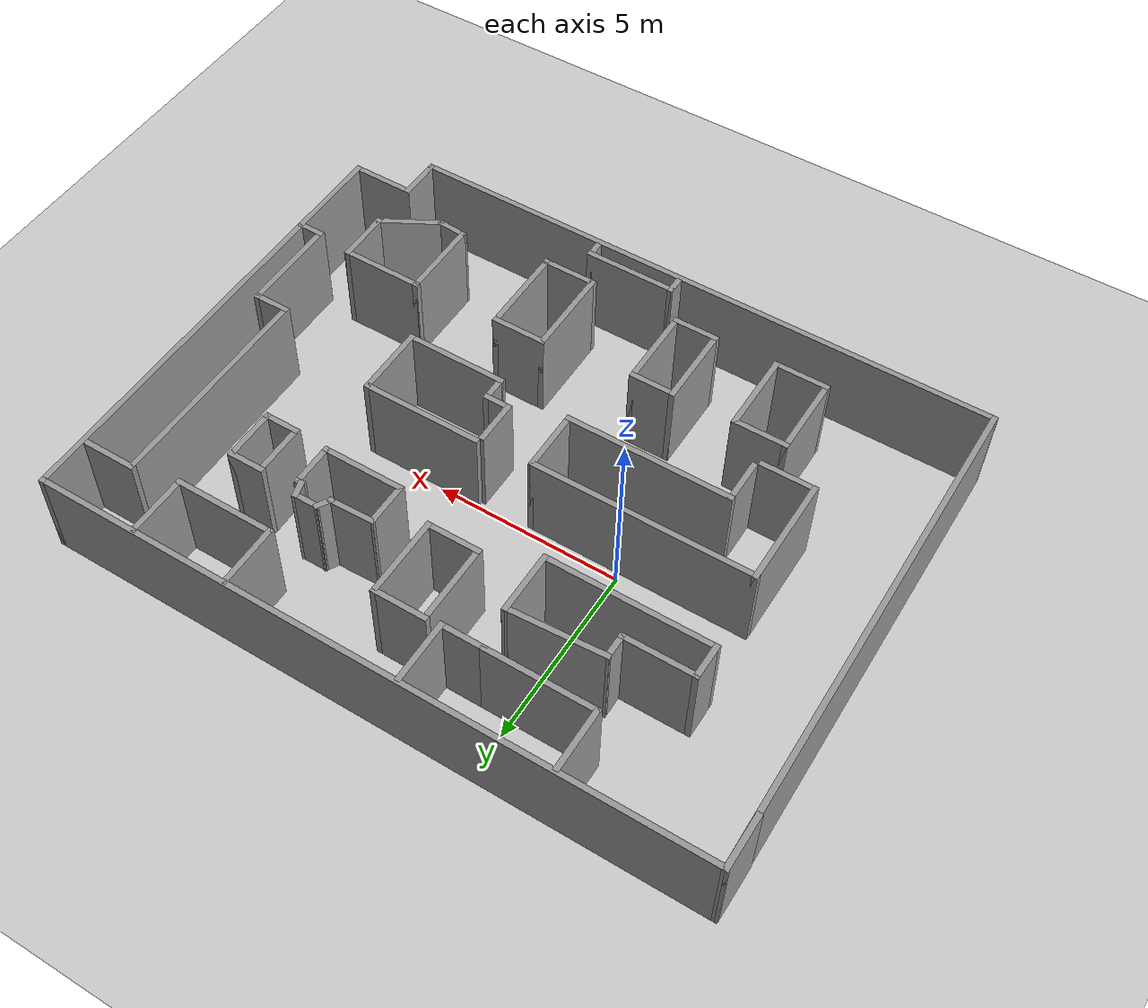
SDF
<?xml version="1.0" ?>

<sdf version="1.5">
    <world name="default">
        <!-- Target real time factor is the product of max_step_size and real_time_update_rate -->
        <!-- Negative real_time_update_rate means that Gazebo will run as fast as possible -->
        <physics type="ode">
            <type>world</type>
            <max_step_size>0.001</max_step_size>
            <real_time_update_rate>1000</real_time_update_rate>
            <iters>500</iters>
        </physics>
        <!-- A global light source -->
        <include>
            <uri>model://sun</uri>
        </include>
        <!-- A ground plane -->
        <include>
            <uri>model://ground_plane</uri>
        </include>

          <model name='E3_121'>
            <pose>2.81135 -0.528435 0 0 -0 0</pose>
            <link name='Wall_0'>
              <collision name='Wall_0_Collision'>
                <geometry>
                  <box>
                    <size>1.5 0.15 2.5</size>
                  </box>
                </geometry>
                <pose>0 0 1.25 0 -0 0</pose>
              </collision>
              <visual name='Wall_0_Visual'>
                <pose>0 0 1.25 0 -0 0</pose>
                <geometry>
                  <box>
                    <size>1.5 0.15 2.5</size>
                  </box>
                </geometry>
                <material>
                  <script>
                    <uri>file://media/materials/scripts/gazebo.material</uri>
                    <name>Gazebo/Grey</name>
                  </script>
                  <ambient>1 1 1 1</ambient>
                </material>
                <meta>
                  <layer>0</layer>
                </meta>
              </visual>
              <pose>-8.92459 6.05 0 0 -0 1.5708</pose>
            </link>
            <link name='Wall_1'>
              <collision name='Wall_1_Collision'>
                <geometry>
                  <box>
                    <size>18 0.15 2.5</size>
                  </box>
                </geometry>
                <pose>0 0 1.25 0 -0 0</pose>
              </collision>
              <visual name='Wall_1_Visual'>
                <pose>0 0 1.25 0 -0 0</pose>
                <geometry>
                  <box>
                    <size>18 0.15 2.5</size>
                  </box>
                </geometry>
                <material>
                  <script>
                    <uri>file://media/materials/scripts/gazebo.material</uri>
                    <name>Gazebo/Grey</name>
                  </script>
                  <ambient>1 1 1 1</ambient>
                </material>
                <meta>
                  <layer>0</layer>
                </meta>
              </visual>
              <pose>0.000416 6.725 0 0 -0 0</pose>
            </link>
            <link name='Wall_10'>
              <collision name='Wall_10_Collision'>
                <geometry>
                  <box>
                    <size>4.5 0.15 2.5</size>
                  </box>
                </geometry>
                <pose>0 0 1.25 0 -0 0</pose>
              </collision>
              <visual name='Wall_10_Visual'>
                <pose>0 0 1.25 0 -0 0</pose>
                <geometry>
                  <box>
                    <size>4.5 0.15 2.5</size>
                  </box>
                </geometry>
                <material>
                  <script>
                    <uri>file://media/materials/scripts/gazebo.material</uri>
                    <name>Gazebo/Grey</name>
                  </script>
                  <ambient>1 1 1 1</ambient>
                </material>
                <meta>
                  <layer>0</layer>
                </meta>
              </visual>
              <pose>-2.4703 -1.33268 0 0 -0 3.14159</pose>
            </link>
            <link name='Wall_11'>
              <collision name='Wall_11_Collision'>
                <geometry>
                  <box>
                    <size>1.25 0.15 2.5</size>
                  </box>
                </geometry>
                <pose>0 0 1.25 0 -0 0</pose>
              </collision>
              <visual name='Wall_11_Visual'>
                <pose>0 0 1.25 0 -0 0</pose>
                <geometry>
                  <box>
                    <size>1.25 0.15 2.5</size>
                  </box>
                </geometry>
                <material>
                  <script>
                    <uri>file://media/materials/scripts/gazebo.material</uri>
                    <name>Gazebo/Grey</name>
                  </script>
                  <ambient>1 1 1 1</ambient>
                </material>
                <meta>
                  <layer>0</layer>
                </meta>
              </visual>
              <pose>-4.6453 -1.88268 0 0 -0 -1.5708</pose>
            </link>
            <link name='Wall_17'>
              <collision name='Wall_17_Collision'>
                <geometry>
                  <box>
                    <size>3 0.15 2.5</size>
                  </box>
                </geometry>
                <pose>0 0 1.25 0 -0 0</pose>
              </collision>
              <visual name='Wall_17_Visual'>
                <pose>0 0 1.25 0 -0 0</pose>
                <geometry>
                  <box>
                    <size>3 0.15 2.5</size>
                  </box>
                </geometry>
                <material>
                  <script>
                    <uri>file://media/materials/scripts/gazebo.material</uri>
                    <name>Gazebo/Grey</name>
                  </script>
                  <ambient>1 1 1 1</ambient>
                </material>
                <meta>
                  <layer>0</layer>
                </meta>
              </visual>
              <pose>-6.1453 -1.15768 0 0 -0 -1.5708</pose>
            </link>
            <link name='Wall_18'>
              <collision name='Wall_18_Collision'>
                <geometry>
                  <box>
                    <size>1.5 0.15 2.5</size>
                  </box>
                </geometry>
                <pose>0 0 1.25 0 -0 0</pose>
              </collision>
              <visual name='Wall_18_Visual'>
                <pose>0 0 1.25 0 -0 0</pose>
                <geometry>
                  <box>
                    <size>1.5 0.15 2.5</size>
                  </box>
                </geometry>
                <material>
                  <script>
                    <uri>file://media/materials/scripts/gazebo.material</uri>
                    <name>Gazebo/Grey</name>
                  </script>
                  <ambient>1 1 1 1</ambient>
                </material>
                <meta>
                  <layer>0</layer>
                </meta>
              </visual>
              <pose>-5.4703 -2.58268 0 0 -0 0</pose>
            </link>
            <link name='Wall_2'>
              <collision name='Wall_2_Collision'>
                <geometry>
                  <box>
                    <size>12.5 0.15 2.5</size>
                  </box>
                </geometry>
                <pose>0 0 1.25 0 -0 0</pose>
              </collision>
              <visual name='Wall_2_Visual'>
                <pose>0 0 1.25 0 -0 0</pose>
                <geometry>
                  <box>
                    <size>12.5 0.15 2.5</size>
                  </box>
                </geometry>
                <material>
                  <script>
                    <uri>file://media/materials/scripts/gazebo.material</uri>
                    <name>Gazebo/Grey</name>
                  </script>
                  <ambient>1 1 1 1</ambient>
                </material>
                <meta>
                  <layer>0</layer>
                </meta>
              </visual>
              <pose>8.92542 0.55 0 0 -0 -1.5708</pose>
            </link>
            <link name='Wall_20'>
              <collision name='Wall_20_Collision'>
                <geometry>
                  <box>
                    <size>1.5 0.15 2.5</size>
                  </box>
                </geometry>
                <pose>0 0 1.25 0 -0 0</pose>
              </collision>
              <visual name='Wall_20_Visual'>
                <pose>0 0 1.25 0 -0 0</pose>
                <geometry>
                  <box>
                    <size>1.5 0.15 2.5</size>
                  </box>
                </geometry>
                <material>
                  <script>
                    <uri>file://media/materials/scripts/gazebo.material</uri>
                    <name>Gazebo/Grey</name>
                  </script>
                  <ambient>1 1 1 1</ambient>
                </material>
                <meta>
                  <layer>0</layer>
                </meta>
              </visual>
              <pose>-4.32038 -3.36907 0 0 -0 0</pose>
            </link>
            <link name='Wall_21'>
              <collision name='Wall_21_Collision'>
                <geometry>
                  <box>
                    <size>2.25 0.15 2.5</size>
                  </box>
                </geometry>
                <pose>0 0 1.25 0 -0 0</pose>
              </collision>
              <visual name='Wall_21_Visual'>
                <pose>0 0 1.25 0 -0 0</pose>
                <geometry>
                  <box>
                    <size>2.25 0.15 2.5</size>
                  </box>
                </geometry>
                <material>
                  <script>
                    <uri>file://media/materials/scripts/gazebo.material</uri>
                    <name>Gazebo/Grey</name>
                  </script>
                  <ambient>1 1 1 1</ambient>
                </material>
                <meta>
                  <layer>0</layer>
                </meta>
              </visual>
              <pose>-3.64538 -4.41907 0 0 -0 -1.5708</pose>
            </link>
            <link name='Wall_22'>
              <collision name='Wall_22_Collision'>
                <geometry>
                  <box>
                    <size>1.5 0.15 2.5</size>
                  </box>
                </geometry>
                <pose>0 0 1.25 0 -0 0</pose>
              </collision>
              <visual name='Wall_22_Visual'>
                <pose>0 0 1.25 0 -0 0</pose>
                <geometry>
                  <box>
                    <size>1.5 0.15 2.5</size>
                  </box>
                </geometry>
                <material>
                  <script>
                    <uri>file://media/materials/scripts/gazebo.material</uri>
                    <name>Gazebo/Grey</name>
                  </script>
                  <ambient>1 1 1 1</ambient>
                </material>
                <meta>
                  <layer>0</layer>
                </meta>
              </visual>
              <pose>-4.32038 -5.46907 0 0 -0 3.14159</pose>
            </link>
            <link name='Wall_23'>
              <collision name='Wall_23_Collision'>
                <geometry>
                  <box>
                    <size>2.25 0.15 2.5</size>
                  </box>
                </geometry>
                <pose>0 0 1.25 0 -0 0</pose>
              </collision>
              <visual name='Wall_23_Visual'>
                <pose>0 0 1.25 0 -0 0</pose>
                <geometry>
                  <box>
                    <size>2.25 0.15 2.5</size>
                  </box>
                </geometry>
                <material>
                  <script>
                    <uri>file://media/materials/scripts/gazebo.material</uri>
                    <name>Gazebo/Grey</name>
                  </script>
                  <ambient>1 1 1 1</ambient>
                </material>
                <meta>
                  <layer>0</layer>
                </meta>
              </visual>
              <pose>-4.99538 -4.41907 0 0 -0 1.5708</pose>
            </link>
            <link name='Wall_25'>
              <collision name='Wall_25_Collision'>
                <geometry>
                  <box>
                    <size>1.25 0.15 2.5</size>
                  </box>
                </geometry>
                <pose>0 0 1.25 0 -0 0</pose>
              </collision>
              <visual name='Wall_25_Visual'>
                <pose>0 0 1.25 0 -0 0</pose>
                <geometry>
                  <box>
                    <size>1.25 0.15 2.5</size>
                  </box>
                </geometry>
                <material>
                  <script>
                    <uri>file://media/materials/scripts/gazebo.material</uri>
                    <name>Gazebo/Grey</name>
                  </script>
                  <ambient>1 1 1 1</ambient>
                </material>
                <meta>
                  <layer>0</layer>
                </meta>
              </visual>
              <pose>-1.43956 -3.31587 0 0 -0 0</pose>
            </link>
            <link name='Wall_26'>
              <collision name='Wall_26_Collision'>
                <geometry>
                  <box>
                    <size>2.25 0.15 2.5</size>
                  </box>
                </geometry>
                <pose>0 0 1.25 0 -0 0</pose>
              </collision>
              <visual name='Wall_26_Visual'>
                <pose>0 0 1.25 0 -0 0</pose>
                <geometry>
                  <box>
                    <size>2.25 0.15 2.5</size>
                  </box>
                </geometry>
                <material>
                  <script>
                    <uri>file://media/materials/scripts/gazebo.material</uri>
                    <name>Gazebo/Grey</name>
                  </script>
                  <ambient>1 1 1 1</ambient>
                </material>
                <meta>
                  <layer>0</layer>
                </meta>
              </visual>
              <pose>-0.88956 -4.36587 0 0 -0 -1.5708</pose>
            </link>
            <link name='Wall_27'>
              <collision name='Wall_27_Collision'>
                <geometry>
                  <box>
                    <size>1.25 0.15 2.5</size>
                  </box>
                </geometry>
                <pose>0 0 1.25 0 -0 0</pose>
              </collision>
              <visual name='Wall_27_Visual'>
                <pose>0 0 1.25 0 -0 0</pose>
                <geometry>
                  <box>
                    <size>1.25 0.15 2.5</size>
                  </box>
                </geometry>
                <material>
                  <script>
                    <uri>file://media/materials/scripts/gazebo.material</uri>
                    <name>Gazebo/Grey</name>
                  </script>
                  <ambient>1 1 1 1</ambient>
                </material>
                <meta>
                  <layer>0</layer>
                </meta>
              </visual>
              <pose>-1.43956 -5.41587 0 0 -0 3.14159</pose>
            </link>
            <link name='Wall_28'>
              <collision name='Wall_28_Collision'>
                <geometry>
                  <box>
                    <size>2.25 0.15 2.5</size>
                  </box>
                </geometry>
                <pose>0 0 1.25 0 -0 0</pose>
              </collision>
              <visual name='Wall_28_Visual'>
                <pose>0 0 1.25 0 -0 0</pose>
                <geometry>
                  <box>
                    <size>2.25 0.15 2.5</size>
                  </box>
                </geometry>
                <material>
                  <script>
                    <uri>file://media/materials/scripts/gazebo.material</uri>
                    <name>Gazebo/Grey</name>
                  </script>
                  <ambient>1 1 1 1</ambient>
                </material>
                <meta>
                  <layer>0</layer>
                </meta>
              </visual>
              <pose>-1.98956 -4.36587 0 0 -0 1.5708</pose>
            </link>
            <link name='Wall_3'>
              <collision name='Wall_3_Collision'>
                <geometry>
                  <box>
                    <size>1.75 0.15 2.5</size>
                  </box>
                </geometry>
                <pose>0 0 1.25 0 -0 0</pose>
              </collision>
              <visual name='Wall_3_Visual'>
                <pose>0 0 1.25 0 -0 0</pose>
                <geometry>
                  <box>
                    <size>1.75 0.15 2.5</size>
                  </box>
                </geometry>
                <material>
                  <script>
                    <uri>file://media/materials/scripts/gazebo.material</uri>
                    <name>Gazebo/Grey</name>
                  </script>
                  <ambient>1 1 1 1</ambient>
                </material>
                <meta>
                  <layer>0</layer>
                </meta>
              </visual>
              <pose>8.12542 -5.625 0 0 -0 3.14159</pose>
            </link>
            <link name='Wall_30'>
              <collision name='Wall_30_Collision'>
                <geometry>
                  <box>
                    <size>1.5 0.15 2.5</size>
                  </box>
                </geometry>
                <pose>0 0 1.25 0 -0 0</pose>
              </collision>
              <visual name='Wall_30_Visual'>
                <pose>0 0 1.25 0 -0 0</pose>
                <geometry>
                  <box>
                    <size>1.5 0.15 2.5</size>
                  </box>
                </geometry>
                <material>
                  <script>
                    <uri>file://media/materials/scripts/gazebo.material</uri>
                    <name>Gazebo/Grey</name>
                  </script>
                  <ambient>1 1 1 1</ambient>
                </material>
                <meta>
                  <layer>0</layer>
                </meta>
              </visual>
              <pose>2.19667 -3.04987 0 0 -0 0</pose>
            </link>
            <link name='Wall_31'>
              <collision name='Wall_31_Collision'>
                <geometry>
                  <box>
                    <size>2.5 0.15 2.5</size>
                  </box>
                </geometry>
                <pose>0 0 1.25 0 -0 0</pose>
              </collision>
              <visual name='Wall_31_Visual'>
                <pose>0 0 1.25 0 -0 0</pose>
                <geometry>
                  <box>
                    <size>2.5 0.15 2.5</size>
                  </box>
                </geometry>
                <material>
                  <script>
                    <uri>file://media/materials/scripts/gazebo.material</uri>
                    <name>Gazebo/Grey</name>
                  </script>
                  <ambient>1 1 1 1</ambient>
                </material>
                <meta>
                  <layer>0</layer>
                </meta>
              </visual>
              <pose>2.87167 -4.22487 0 0 -0 -1.5708</pose>
            </link>
            <link name='Wall_32'>
              <collision name='Wall_32_Collision'>
                <geometry>
                  <box>
                    <size>1.5 0.15 2.5</size>
                  </box>
                </geometry>
                <pose>0 0 1.25 0 -0 0</pose>
              </collision>
              <visual name='Wall_32_Visual'>
                <pose>0 0 1.25 0 -0 0</pose>
                <geometry>
                  <box>
                    <size>1.5 0.15 2.5</size>
                  </box>
                </geometry>
                <material>
                  <script>
                    <uri>file://media/materials/scripts/gazebo.material</uri>
                    <name>Gazebo/Grey</name>
                  </script>
                  <ambient>1 1 1 1</ambient>
                </material>
                <meta>
                  <layer>0</layer>
                </meta>
              </visual>
              <pose>2.19667 -5.39987 0 0 -0 3.14159</pose>
            </link>
            <link name='Wall_33'>
              <collision name='Wall_33_Collision'>
                <geometry>
                  <box>
                    <size>2.5 0.15 2.5</size>
                  </box>
                </geometry>
                <pose>0 0 1.25 0 -0 0</pose>
              </collision>
              <visual name='Wall_33_Visual'>
                <pose>0 0 1.25 0 -0 0</pose>
                <geometry>
                  <box>
                    <size>2.5 0.15 2.5</size>
                  </box>
                </geometry>
                <material>
                  <script>
                    <uri>file://media/materials/scripts/gazebo.material</uri>
                    <name>Gazebo/Grey</name>
                  </script>
                  <ambient>1 1 1 1</ambient>
                </material>
                <meta>
                  <layer>0</layer>
                </meta>
              </visual>
              <pose>1.52167 -4.22487 0 0 -0 1.5708</pose>
            </link>
            <link name='Wall_35'>
              <collision name='Wall_35_Collision'>
                <geometry>
                  <box>
                    <size>1.25 0.15 2.5</size>
                  </box>
                </geometry>
                <pose>0 0 1.25 0 -0 0</pose>
              </collision>
              <visual name='Wall_35_Visual'>
                <pose>0 0 1.25 0 -0 0</pose>
                <geometry>
                  <box>
                    <size>1.25 0.15 2.5</size>
                  </box>
                </geometry>
                <material>
                  <script>
                    <uri>file://media/materials/scripts/gazebo.material</uri>
                    <name>Gazebo/Grey</name>
                  </script>
                  <ambient>1 1 1 1</ambient>
                </material>
                <meta>
                  <layer>0</layer>
                </meta>
              </visual>
              <pose>1.09606 -0.301444 0 0 -0 -1.5708</pose>
            </link>
            <link name='Wall_36'>
              <collision name='Wall_36_Collision'>
                <geometry>
                  <box>
                    <size>0.75 0.15 2.5</size>
                  </box>
                </geometry>
                <pose>0 0 1.25 0 -0 0</pose>
              </collision>
              <visual name='Wall_36_Visual'>
                <pose>0 0 1.25 0 -0 0</pose>
                <geometry>
                  <box>
                    <size>0.75 0.15 2.5</size>
                  </box>
                </geometry>
                <material>
                  <script>
                    <uri>file://media/materials/scripts/gazebo.material</uri>
                    <name>Gazebo/Grey</name>
                  </script>
                  <ambient>1 1 1 1</ambient>
                </material>
                <meta>
                  <layer>0</layer>
                </meta>
              </visual>
              <pose>1.39606 -0.851444 0 0 -0 0</pose>
            </link>
            <link name='Wall_37'>
              <collision name='Wall_37_Collision'>
                <geometry>
                  <box>
                    <size>0.75 0.15 2.5</size>
                  </box>
                </geometry>
                <pose>0 0 1.25 0 -0 0</pose>
              </collision>
              <visual name='Wall_37_Visual'>
                <pose>0 0 1.25 0 -0 0</pose>
                <geometry>
                  <box>
                    <size>0.75 0.15 2.5</size>
                  </box>
                </geometry>
                <material>
                  <script>
                    <uri>file://media/materials/scripts/gazebo.material</uri>
                    <name>Gazebo/Grey</name>
                  </script>
                  <ambient>1 1 1 1</ambient>
                </material>
                <meta>
                  <layer>0</layer>
                </meta>
              </visual>
              <pose>1.69606 -1.15144 0 0 -0 -1.5708</pose>
            </link>
            <link name='Wall_38'>
              <collision name='Wall_38_Collision'>
                <geometry>
                  <box>
                    <size>2.75 0.15 2.5</size>
                  </box>
                </geometry>
                <pose>0 0 1.25 0 -0 0</pose>
              </collision>
              <visual name='Wall_38_Visual'>
                <pose>0 0 1.25 0 -0 0</pose>
                <geometry>
                  <box>
                    <size>2.75 0.15 2.5</size>
                  </box>
                </geometry>
                <material>
                  <script>
                    <uri>file://media/materials/scripts/gazebo.material</uri>
                    <name>Gazebo/Grey</name>
                  </script>
                  <ambient>1 1 1 1</ambient>
                </material>
                <meta>
                  <layer>0</layer>
                </meta>
              </visual>
              <pose>2.99606 -1.45144 0 0 -0 0</pose>
            </link>
            <link name='Wall_39'>
              <collision name='Wall_39_Collision'>
                <geometry>
                  <box>
                    <size>2 0.15 2.5</size>
                  </box>
                </geometry>
                <pose>0 0 1.25 0 -0 0</pose>
              </collision>
              <visual name='Wall_39_Visual'>
                <pose>0 0 1.25 0 -0 0</pose>
                <geometry>
                  <box>
                    <size>2 0.15 2.5</size>
                  </box>
                </geometry>
                <material>
                  <script>
                    <uri>file://media/materials/scripts/gazebo.material</uri>
                    <name>Gazebo/Grey</name>
                  </script>
                  <ambient>1 1 1 1</ambient>
                </material>
                <meta>
                  <layer>0</layer>
                </meta>
              </visual>
              <pose>4.29606 -0.526444 0 0 -0 1.5708</pose>
            </link>
            <link name='Wall_4'>
              <collision name='Wall_4_Collision'>
                <geometry>
                  <box>
                    <size>1.25 0.15 2.5</size>
                  </box>
                </geometry>
                <pose>0 0 1.25 0 -0 0</pose>
              </collision>
              <visual name='Wall_4_Visual'>
                <pose>0 0 1.25 0 -0 0</pose>
                <geometry>
                  <box>
                    <size>1.25 0.15 2.5</size>
                  </box>
                </geometry>
                <material>
                  <script>
                    <uri>file://media/materials/scripts/gazebo.material</uri>
                    <name>Gazebo/Grey</name>
                  </script>
                  <ambient>1 1 1 1</ambient>
                </material>
                <meta>
                  <layer>0</layer>
                </meta>
              </visual>
              <pose>7.32541 -6.175 0 0 -0 -1.5708</pose>
            </link>
            <link name='Wall_40'>
              <collision name='Wall_40_Collision'>
                <geometry>
                  <box>
                    <size>3.25 0.15 2.5</size>
                  </box>
                </geometry>
                <pose>0 0 1.25 0 -0 0</pose>
              </collision>
              <visual name='Wall_40_Visual'>
                <pose>0 0 1.25 0 -0 0</pose>
                <geometry>
                  <box>
                    <size>3.25 0.15 2.5</size>
                  </box>
                </geometry>
                <material>
                  <script>
                    <uri>file://media/materials/scripts/gazebo.material</uri>
                    <name>Gazebo/Grey</name>
                  </script>
                  <ambient>1 1 1 1</ambient>
                </material>
                <meta>
                  <layer>0</layer>
                </meta>
              </visual>
              <pose>2.74606 0.398556 0 0 -0 3.14159</pose>
            </link>
            <link name='Wall_42'>
              <collision name='Wall_42_Collision'>
                <geometry>
                  <box>
                    <size>1.75 0.15 2.5</size>
                  </box>
                </geometry>
                <pose>0 0 1.25 0 -0 0</pose>
              </collision>
              <visual name='Wall_42_Visual'>
                <pose>0 0 1.25 0 -0 0</pose>
                <geometry>
                  <box>
                    <size>1.75 0.15 2.5</size>
                  </box>
                </geometry>
                <material>
                  <script>
                    <uri>file://media/materials/scripts/gazebo.material</uri>
                    <name>Gazebo/Grey</name>
                  </script>
                  <ambient>1 1 1 1</ambient>
                </material>
                <meta>
                  <layer>0</layer>
                </meta>
              </visual>
              <pose>-1.94548 3.14797 0 0 -0 -1.5708</pose>
            </link>
            <link name='Wall_43'>
              <collision name='Wall_43_Collision'>
                <geometry>
                  <box>
                    <size>4.5 0.15 2.5</size>
                  </box>
                </geometry>
                <pose>0 0 1.25 0 -0 0</pose>
              </collision>
              <visual name='Wall_43_Visual'>
                <pose>0 0 1.25 0 -0 0</pose>
                <geometry>
                  <box>
                    <size>4.5 0.15 2.5</size>
                  </box>
                </geometry>
                <material>
                  <script>
                    <uri>file://media/materials/scripts/gazebo.material</uri>
                    <name>Gazebo/Grey</name>
                  </script>
                  <ambient>1 1 1 1</ambient>
                </material>
                <meta>
                  <layer>0</layer>
                </meta>
              </visual>
              <pose>-4.12047 2.34797 0 0 -0 3.14159</pose>
            </link>
            <link name='Wall_44'>
              <collision name='Wall_44_Collision'>
                <geometry>
                  <box>
                    <size>1 0.15 2.5</size>
                  </box>
                </geometry>
                <pose>0 0 1.25 0 -0 0</pose>
              </collision>
              <visual name='Wall_44_Visual'>
                <pose>0 0 1.25 0 -0 0</pose>
                <geometry>
                  <box>
                    <size>1 0.15 2.5</size>
                  </box>
                </geometry>
                <material>
                  <script>
                    <uri>file://media/materials/scripts/gazebo.material</uri>
                    <name>Gazebo/Grey</name>
                  </script>
                  <ambient>1 1 1 1</ambient>
                </material>
                <meta>
                  <layer>0</layer>
                </meta>
              </visual>
              <pose>-6.29547 2.77297 0 0 -0 1.5708</pose>
            </link>
            <link name='Wall_45'>
              <collision name='Wall_45_Collision'>
                <geometry>
                  <box>
                    <size>2 0.15 2.5</size>
                  </box>
                </geometry>
                <pose>0 0 1.25 0 -0 0</pose>
              </collision>
              <visual name='Wall_45_Visual'>
                <pose>0 0 1.25 0 -0 0</pose>
                <geometry>
                  <box>
                    <size>2 0.15 2.5</size>
                  </box>
                </geometry>
                <material>
                  <script>
                    <uri>file://media/materials/scripts/gazebo.material</uri>
                    <name>Gazebo/Grey</name>
                  </script>
                  <ambient>1 1 1 1</ambient>
                </material>
                <meta>
                  <layer>0</layer>
                </meta>
              </visual>
              <pose>-5.37047 3.19797 0 0 -0 0</pose>
            </link>
            <link name='Wall_46'>
              <collision name='Wall_46_Collision'>
                <geometry>
                  <box>
                    <size>0.75 0.15 2.5</size>
                  </box>
                </geometry>
                <pose>0 0 1.25 0 -0 0</pose>
              </collision>
              <visual name='Wall_46_Visual'>
                <pose>0 0 1.25 0 -0 0</pose>
                <geometry>
                  <box>
                    <size>0.75 0.15 2.5</size>
                  </box>
                </geometry>
                <material>
                  <script>
                    <uri>file://media/materials/scripts/gazebo.material</uri>
                    <name>Gazebo/Grey</name>
                  </script>
                  <ambient>1 1 1 1</ambient>
                </material>
                <meta>
                  <layer>0</layer>
                </meta>
              </visual>
              <pose>-4.44548 3.49797 0 0 -0 1.5708</pose>
            </link>
            <link name='Wall_47'>
              <collision name='Wall_47_Collision'>
                <geometry>
                  <box>
                    <size>2.6545 0.15 2.5</size>
                  </box>
                </geometry>
                <pose>0 0 1.25 0 -0 0</pose>
              </collision>
              <visual name='Wall_47_Visual'>
                <pose>0 0 1.25 0 -0 0</pose>
                <geometry>
                  <box>
                    <size>2.6545 0.15 2.5</size>
                  </box>
                </geometry>
                <material>
                  <script>
                    <uri>file://media/materials/scripts/gazebo.material</uri>
                    <name>Gazebo/Grey</name>
                  </script>
                  <ambient>1 1 1 1</ambient>
                </material>
                <meta>
                  <layer>0</layer>
                </meta>
              </visual>
              <pose>-3.19548 3.87297 0 0 -0 0.059928</pose>
            </link>
            <link name='Wall_49'>
              <collision name='Wall_49_Collision'>
                <geometry>
                  <box>
                    <size>1.75 0.15 2.5</size>
                  </box>
                </geometry>
                <pose>0 0 1.25 0 -0 0</pose>
              </collision>
              <visual name='Wall_49_Visual'>
                <pose>0 0 1.25 0 -0 0</pose>
                <geometry>
                  <box>
                    <size>1.75 0.15 2.5</size>
                  </box>
                </geometry>
                <material>
                  <script>
                    <uri>file://media/materials/scripts/gazebo.material</uri>
                    <name>Gazebo/Grey</name>
                  </script>
                  <ambient>1 1 1 1</ambient>
                </material>
                <meta>
                  <layer>0</layer>
                </meta>
              </visual>
              <pose>-4.95245 5.85425 0 0 -0 -1.5708</pose>
            </link>
            <link name='Wall_5'>
              <collision name='Wall_5_Collision'>
                <geometry>
                  <box>
                    <size>16.25 0.15 2.5</size>
                  </box>
                </geometry>
                <pose>0 0 1.25 0 -0 0</pose>
              </collision>
              <visual name='Wall_5_Visual'>
                <pose>0 0 1.25 0 -0 0</pose>
                <geometry>
                  <box>
                    <size>16.25 0.15 2.5</size>
                  </box>
                </geometry>
                <material>
                  <script>
                    <uri>file://media/materials/scripts/gazebo.material</uri>
                    <name>Gazebo/Grey</name>
                  </script>
                  <ambient>1 1 1 1</ambient>
                </material>
                <meta>
                  <layer>0</layer>
                </meta>
              </visual>
              <pose>-0.724584 -6.725 0 0 -0 3.14159</pose>
            </link>
            <link name='Wall_50'>
              <collision name='Wall_50_Collision'>
                <geometry>
                  <box>
                    <size>3 0.15 2.5</size>
                  </box>
                </geometry>
                <pose>0 0 1.25 0 -0 0</pose>
              </collision>
              <visual name='Wall_50_Visual'>
                <pose>0 0 1.25 0 -0 0</pose>
                <geometry>
                  <box>
                    <size>3 0.15 2.5</size>
                  </box>
                </geometry>
                <material>
                  <script>
                    <uri>file://media/materials/scripts/gazebo.material</uri>
                    <name>Gazebo/Grey</name>
                  </script>
                  <ambient>1 1 1 1</ambient>
                </material>
                <meta>
                  <layer>0</layer>
                </meta>
              </visual>
              <pose>-3.52745 5.05425 0 0 -0 0</pose>
            </link>
            <link name='Wall_51'>
              <collision name='Wall_51_Collision'>
                <geometry>
                  <box>
                    <size>1.25 0.15 2.5</size>
                  </box>
                </geometry>
                <pose>0 0 1.25 0 -0 0</pose>
              </collision>
              <visual name='Wall_51_Visual'>
                <pose>0 0 1.25 0 -0 0</pose>
                <geometry>
                  <box>
                    <size>1.25 0.15 2.5</size>
                  </box>
                </geometry>
                <material>
                  <script>
                    <uri>file://media/materials/scripts/gazebo.material</uri>
                    <name>Gazebo/Grey</name>
                  </script>
                  <ambient>1 1 1 1</ambient>
                </material>
                <meta>
                  <layer>0</layer>
                </meta>
              </visual>
              <pose>-1.55245 5.05425 0 0 -0 0</pose>
            </link>
            <link name='Wall_52'>
              <collision name='Wall_52_Collision'>
                <geometry>
                  <box>
                    <size>1.75 0.15 2.5</size>
                  </box>
                </geometry>
                <pose>0 0 1.25 0 -0 0</pose>
              </collision>
              <visual name='Wall_52_Visual'>
                <pose>0 0 1.25 0 -0 0</pose>
                <geometry>
                  <box>
                    <size>1.75 0.15 2.5</size>
                  </box>
                </geometry>
                <material>
                  <script>
                    <uri>file://media/materials/scripts/gazebo.material</uri>
                    <name>Gazebo/Grey</name>
                  </script>
                  <ambient>1 1 1 1</ambient>
                </material>
                <meta>
                  <layer>0</layer>
                </meta>
              </visual>
              <pose>-1.00245 5.85425 0 0 -0 1.5708</pose>
            </link>
            <link name='Wall_54'>
              <collision name='Wall_54_Collision'>
                <geometry>
                  <box>
                    <size>2.25 0.15 2.5</size>
                  </box>
                </geometry>
                <pose>0 0 1.25 0 -0 0</pose>
              </collision>
              <visual name='Wall_54_Visual'>
                <pose>0 0 1.25 0 -0 0</pose>
                <geometry>
                  <box>
                    <size>2.25 0.15 2.5</size>
                  </box>
                </geometry>
                <material>
                  <script>
                    <uri>file://media/materials/scripts/gazebo.material</uri>
                    <name>Gazebo/Grey</name>
                  </script>
                  <ambient>1 1 1 1</ambient>
                </material>
                <meta>
                  <layer>0</layer>
                </meta>
              </visual>
              <pose>-0.6039 4.0545 0 0 -0 -1.5708</pose>
            </link>
            <link name='Wall_55'>
              <collision name='Wall_55_Collision'>
                <geometry>
                  <box>
                    <size>1.5 0.15 2.5</size>
                  </box>
                </geometry>
                <pose>0 0 1.25 0 -0 0</pose>
              </collision>
              <visual name='Wall_55_Visual'>
                <pose>0 0 1.25 0 -0 0</pose>
                <geometry>
                  <box>
                    <size>1.5 0.15 2.5</size>
                  </box>
                </geometry>
                <material>
                  <script>
                    <uri>file://media/materials/scripts/gazebo.material</uri>
                    <name>Gazebo/Grey</name>
                  </script>
                  <ambient>1 1 1 1</ambient>
                </material>
                <meta>
                  <layer>0</layer>
                </meta>
              </visual>
              <pose>0.0711 3.0045 0 0 -0 0</pose>
            </link>
            <link name='Wall_56'>
              <collision name='Wall_56_Collision'>
                <geometry>
                  <box>
                    <size>2.25 0.15 2.5</size>
                  </box>
                </geometry>
                <pose>0 0 1.25 0 -0 0</pose>
              </collision>
              <visual name='Wall_56_Visual'>
                <pose>0 0 1.25 0 -0 0</pose>
                <geometry>
                  <box>
                    <size>2.25 0.15 2.5</size>
                  </box>
                </geometry>
                <material>
                  <script>
                    <uri>file://media/materials/scripts/gazebo.material</uri>
                    <name>Gazebo/Grey</name>
                  </script>
                  <ambient>1 1 1 1</ambient>
                </material>
                <meta>
                  <layer>0</layer>
                </meta>
              </visual>
              <pose>0.7461 4.0545 0 0 -0 1.5708</pose>
            </link>
            <link name='Wall_57'>
              <collision name='Wall_57_Collision'>
                <geometry>
                  <box>
                    <size>1.5 0.15 2.5</size>
                  </box>
                </geometry>
                <pose>0 0 1.25 0 -0 0</pose>
              </collision>
              <visual name='Wall_57_Visual'>
                <pose>0 0 1.25 0 -0 0</pose>
                <geometry>
                  <box>
                    <size>1.5 0.15 2.5</size>
                  </box>
                </geometry>
                <material>
                  <script>
                    <uri>file://media/materials/scripts/gazebo.material</uri>
                    <name>Gazebo/Grey</name>
                  </script>
                  <ambient>1 1 1 1</ambient>
                </material>
                <meta>
                  <layer>0</layer>
                </meta>
              </visual>
              <pose>0.0711 5.1045 0 0 -0 3.14159</pose>
            </link>
            <link name='Wall_59'>
              <collision name='Wall_59_Collision'>
                <geometry>
                  <box>
                    <size>1.75 0.15 2.5</size>
                  </box>
                </geometry>
                <pose>0 0 1.25 0 -0 0</pose>
              </collision>
              <visual name='Wall_59_Visual'>
                <pose>0 0 1.25 0 -0 0</pose>
                <geometry>
                  <box>
                    <size>1.75 0.15 2.5</size>
                  </box>
                </geometry>
                <material>
                  <script>
                    <uri>file://media/materials/scripts/gazebo.material</uri>
                    <name>Gazebo/Grey</name>
                  </script>
                  <ambient>1 1 1 1</ambient>
                </material>
                <meta>
                  <layer>0</layer>
                </meta>
              </visual>
              <pose>3.65213 5.87739 0 0 -0 -1.5708</pose>
            </link>
            <link name='Wall_6'>
              <collision name='Wall_6_Collision'>
                <geometry>
                  <box>
                    <size>13.6008 0.15 2.5</size>
                  </box>
                </geometry>
                <pose>0 0 1.25 0 -0 0</pose>
              </collision>
              <visual name='Wall_6_Visual'>
                <pose>0 0 1.25 0 -0 0</pose>
                <geometry>
                  <box>
                    <size>13.6008 0.15 2.5</size>
                  </box>
                </geometry>
                <material>
                  <script>
                    <uri>file://media/materials/scripts/gazebo.material</uri>
                    <name>Gazebo/Grey</name>
                  </script>
                  <ambient>1 1 1 1</ambient>
                </material>
                <meta>
                  <layer>0</layer>
                </meta>
              </visual>
              <pose>-8.84958 0 0 0 -0 1.58195</pose>
            </link>
            <link name='Wall_60'>
              <collision name='Wall_60_Collision'>
                <geometry>
                  <box>
                    <size>2.75 0.15 2.5</size>
                  </box>
                </geometry>
                <pose>0 0 1.25 0 -0 0</pose>
              </collision>
              <visual name='Wall_60_Visual'>
                <pose>0 0 1.25 0 -0 0</pose>
                <geometry>
                  <box>
                    <size>2.75 0.15 2.5</size>
                  </box>
                </geometry>
                <material>
                  <script>
                    <uri>file://media/materials/scripts/gazebo.material</uri>
                    <name>Gazebo/Grey</name>
                  </script>
                  <ambient>1 1 1 1</ambient>
                </material>
                <meta>
                  <layer>0</layer>
                </meta>
              </visual>
              <pose>4.95213 5.07738 0 0 -0 0</pose>
            </link>
            <link name='Wall_61'>
              <collision name='Wall_61_Collision'>
                <geometry>
                  <box>
                    <size>1.75 0.15 2.5</size>
                  </box>
                </geometry>
                <pose>0 0 1.25 0 -0 0</pose>
              </collision>
              <visual name='Wall_61_Visual'>
                <pose>0 0 1.25 0 -0 0</pose>
                <geometry>
                  <box>
                    <size>1.75 0.15 2.5</size>
                  </box>
                </geometry>
                <material>
                  <script>
                    <uri>file://media/materials/scripts/gazebo.material</uri>
                    <name>Gazebo/Grey</name>
                  </script>
                  <ambient>1 1 1 1</ambient>
                </material>
                <meta>
                  <layer>0</layer>
                </meta>
              </visual>
              <pose>6.25213 5.87739 0 0 -0 1.5708</pose>
            </link>
            <link name='Wall_63'>
              <collision name='Wall_63_Collision'>
                <geometry>
                  <box>
                    <size>1.25 0.15 2.5</size>
                  </box>
                </geometry>
                <pose>0 0 1.25 0 -0 0</pose>
              </collision>
              <visual name='Wall_63_Visual'>
                <pose>0 0 1.25 0 -0 0</pose>
                <geometry>
                  <box>
                    <size>1.25 0.15 2.5</size>
                  </box>
                </geometry>
                <material>
                  <script>
                    <uri>file://media/materials/scripts/gazebo.material</uri>
                    <name>Gazebo/Grey</name>
                  </script>
                  <ambient>1 1 1 1</ambient>
                </material>
                <meta>
                  <layer>0</layer>
                </meta>
              </visual>
              <pose>1.87108 3.05101 0 0 -0 -1.5708</pose>
            </link>
            <link name='Wall_64'>
              <collision name='Wall_64_Collision'>
                <geometry>
                  <box>
                    <size>2.25 0.15 2.5</size>
                  </box>
                </geometry>
                <pose>0 0 1.25 0 -0 0</pose>
              </collision>
              <visual name='Wall_64_Visual'>
                <pose>0 0 1.25 0 -0 0</pose>
                <geometry>
                  <box>
                    <size>2.25 0.15 2.5</size>
                  </box>
                </geometry>
                <material>
                  <script>
                    <uri>file://media/materials/scripts/gazebo.material</uri>
                    <name>Gazebo/Grey</name>
                  </script>
                  <ambient>1 1 1 1</ambient>
                </material>
                <meta>
                  <layer>0</layer>
                </meta>
              </visual>
              <pose>2.92108 2.50101 0 0 -0 0</pose>
            </link>
            <link name='Wall_65'>
              <collision name='Wall_65_Collision'>
                <geometry>
                  <box>
                    <size>1.25 0.15 2.5</size>
                  </box>
                </geometry>
                <pose>0 0 1.25 0 -0 0</pose>
              </collision>
              <visual name='Wall_65_Visual'>
                <pose>0 0 1.25 0 -0 0</pose>
                <geometry>
                  <box>
                    <size>1.25 0.15 2.5</size>
                  </box>
                </geometry>
                <material>
                  <script>
                    <uri>file://media/materials/scripts/gazebo.material</uri>
                    <name>Gazebo/Grey</name>
                  </script>
                  <ambient>1 1 1 1</ambient>
                </material>
                <meta>
                  <layer>0</layer>
                </meta>
              </visual>
              <pose>3.97107 3.05101 0 0 -0 1.5708</pose>
            </link>
            <link name='Wall_66'>
              <collision name='Wall_66_Collision'>
                <geometry>
                  <box>
                    <size>0.25 0.15 2.5</size>
                  </box>
                </geometry>
                <pose>0 0 1.25 0 -0 0</pose>
              </collision>
              <visual name='Wall_66_Visual'>
                <pose>0 0 1.25 0 -0 0</pose>
                <geometry>
                  <box>
                    <size>0.25 0.15 2.5</size>
                  </box>
                </geometry>
                <material>
                  <script>
                    <uri>file://media/materials/scripts/gazebo.material</uri>
                    <name>Gazebo/Grey</name>
                  </script>
                  <ambient>1 1 1 1</ambient>
                </material>
                <meta>
                  <layer>0</layer>
                </meta>
              </visual>
              <pose>3.92108 3.60101 0 0 -0 3.14159</pose>
            </link>
            <link name='Wall_67'>
              <collision name='Wall_67_Collision'>
                <geometry>
                  <box>
                    <size>0.5 0.15 2.5</size>
                  </box>
                </geometry>
                <pose>0 0 1.25 0 -0 0</pose>
              </collision>
              <visual name='Wall_67_Visual'>
                <pose>0 0 1.25 0 -0 0</pose>
                <geometry>
                  <box>
                    <size>0.5 0.15 2.5</size>
                  </box>
                </geometry>
                <material>
                  <script>
                    <uri>file://media/materials/scripts/gazebo.material</uri>
                    <name>Gazebo/Grey</name>
                  </script>
                  <ambient>1 1 1 1</ambient>
                </material>
                <meta>
                  <layer>0</layer>
                </meta>
              </visual>
              <pose>3.82578 3.77005 0 0 -0 1.8326</pose>
            </link>
            <link name='Wall_68'>
              <collision name='Wall_68_Collision'>
                <geometry>
                  <box>
                    <size>0.75 0.15 2.5</size>
                  </box>
                </geometry>
                <pose>0 0 1.25 0 -0 0</pose>
              </collision>
              <visual name='Wall_68_Visual'>
                <pose>0 0 1.25 0 -0 0</pose>
                <geometry>
                  <box>
                    <size>0.75 0.15 2.5</size>
                  </box>
                </geometry>
                <material>
                  <script>
                    <uri>file://media/materials/scripts/gazebo.material</uri>
                    <name>Gazebo/Grey</name>
                  </script>
                  <ambient>1 1 1 1</ambient>
                </material>
                <meta>
                  <layer>0</layer>
                </meta>
              </visual>
              <pose>3.48049 3.93909 0 0 -0 3.14159</pose>
            </link>
            <link name='Wall_69'>
              <collision name='Wall_69_Collision'>
                <geometry>
                  <box>
                    <size>0.5 0.15 2.5</size>
                  </box>
                </geometry>
                <pose>0 0 1.25 0 -0 0</pose>
              </collision>
              <visual name='Wall_69_Visual'>
                <pose>0 0 1.25 0 -0 0</pose>
                <geometry>
                  <box>
                    <size>0.5 0.15 2.5</size>
                  </box>
                </geometry>
                <material>
                  <script>
                    <uri>file://media/materials/scripts/gazebo.material</uri>
                    <name>Gazebo/Grey</name>
                  </script>
                  <ambient>1 1 1 1</ambient>
                </material>
                <meta>
                  <layer>0</layer>
                </meta>
              </visual>
              <pose>3.09299 3.78753 0 0 -0 -2.0944</pose>
            </link>
            <link name='Wall_70'>
              <collision name='Wall_70_Collision'>
                <geometry>
                  <box>
                    <size>1.28495 0.15 2.5</size>
                  </box>
                </geometry>
                <pose>0 0 1.25 0 -0 0</pose>
              </collision>
              <visual name='Wall_70_Visual'>
                <pose>0 0 1.25 0 -0 0</pose>
                <geometry>
                  <box>
                    <size>1.28495 0.15 2.5</size>
                  </box>
                </geometry>
                <material>
                  <script>
                    <uri>file://media/materials/scripts/gazebo.material</uri>
                    <name>Gazebo/Grey</name>
                  </script>
                  <ambient>1 1 1 1</ambient>
                </material>
                <meta>
                  <layer>0</layer>
                </meta>
              </visual>
              <pose>2.43828 3.6185 0 0 -0 -3.11078</pose>
            </link>
            <link name='Wall_72'>
              <collision name='Wall_72_Collision'>
                <geometry>
                  <box>
                    <size>1.5 0.15 2.5</size>
                  </box>
                </geometry>
                <pose>0 0 1.25 0 -0 0</pose>
              </collision>
              <visual name='Wall_72_Visual'>
                <pose>0 0 1.25 0 -0 0</pose>
                <geometry>
                  <box>
                    <size>1.5 0.15 2.5</size>
                  </box>
                </geometry>
                <material>
                  <script>
                    <uri>file://media/materials/scripts/gazebo.material</uri>
                    <name>Gazebo/Grey</name>
                  </script>
                  <ambient>1 1 1 1</ambient>
                </material>
                <meta>
                  <layer>0</layer>
                </meta>
              </visual>
              <pose>4.90118 3.11106 0 0 -0 -1.5708</pose>
            </link>
            <link name='Wall_73'>
              <collision name='Wall_73_Collision'>
                <geometry>
                  <box>
                    <size>1 0.15 2.5</size>
                  </box>
                </geometry>
                <pose>0 0 1.25 0 -0 0</pose>
              </collision>
              <visual name='Wall_73_Visual'>
                <pose>0 0 1.25 0 -0 0</pose>
                <geometry>
                  <box>
                    <size>1 0.15 2.5</size>
                  </box>
                </geometry>
                <material>
                  <script>
                    <uri>file://media/materials/scripts/gazebo.material</uri>
                    <name>Gazebo/Grey</name>
                  </script>
                  <ambient>1 1 1 1</ambient>
                </material>
                <meta>
                  <layer>0</layer>
                </meta>
              </visual>
              <pose>5.32618 2.43606 0 0 -0 0</pose>
            </link>
            <link name='Wall_74'>
              <collision name='Wall_74_Collision'>
                <geometry>
                  <box>
                    <size>1.5 0.15 2.5</size>
                  </box>
                </geometry>
                <pose>0 0 1.25 0 -0 0</pose>
              </collision>
              <visual name='Wall_74_Visual'>
                <pose>0 0 1.25 0 -0 0</pose>
                <geometry>
                  <box>
                    <size>1.5 0.15 2.5</size>
                  </box>
                </geometry>
                <material>
                  <script>
                    <uri>file://media/materials/scripts/gazebo.material</uri>
                    <name>Gazebo/Grey</name>
                  </script>
                  <ambient>1 1 1 1</ambient>
                </material>
                <meta>
                  <layer>0</layer>
                </meta>
              </visual>
              <pose>5.75119 3.11106 0 0 -0 1.5708</pose>
            </link>
            <link name='Wall_75'>
              <collision name='Wall_75_Collision'>
                <geometry>
                  <box>
                    <size>1 0.15 2.5</size>
                  </box>
                </geometry>
                <pose>0 0 1.25 0 -0 0</pose>
              </collision>
              <visual name='Wall_75_Visual'>
                <pose>0 0 1.25 0 -0 0</pose>
                <geometry>
                  <box>
                    <size>1 0.15 2.5</size>
                  </box>
                </geometry>
                <material>
                  <script>
                    <uri>file://media/materials/scripts/gazebo.material</uri>
                    <name>Gazebo/Grey</name>
                  </script>
                  <ambient>1 1 1 1</ambient>
                </material>
                <meta>
                  <layer>0</layer>
                </meta>
              </visual>
              <pose>5.32618 3.78606 0 0 -0 3.14159</pose>
            </link>
            <link name='Wall_77'>
              <collision name='Wall_77_Collision'>
                <geometry>
                  <box>
                    <size>1.5 0.15 2.5</size>
                  </box>
                </geometry>
                <pose>0 0 1.25 0 -0 0</pose>
              </collision>
              <visual name='Wall_77_Visual'>
                <pose>0 0 1.25 0 -0 0</pose>
                <geometry>
                  <box>
                    <size>1.5 0.15 2.5</size>
                  </box>
                </geometry>
                <material>
                  <script>
                    <uri>file://media/materials/scripts/gazebo.material</uri>
                    <name>Gazebo/Grey</name>
                  </script>
                  <ambient>1 1 1 1</ambient>
                </material>
                <meta>
                  <layer>0</layer>
                </meta>
              </visual>
              <pose>8.14368 5.33581 0 0 -0 0</pose>
            </link>
            <link name='Wall_79'>
              <collision name='Wall_79_Collision'>
                <geometry>
                  <box>
                    <size>6 0.15 2.5</size>
                  </box>
                </geometry>
                <pose>0 0 1.25 0 -0 0</pose>
              </collision>
              <visual name='Wall_79_Visual'>
                <pose>0 0 1.25 0 -0 0</pose>
                <geometry>
                  <box>
                    <size>6 0.15 2.5</size>
                  </box>
                </geometry>
                <material>
                  <script>
                    <uri>file://media/materials/scripts/gazebo.material</uri>
                    <name>Gazebo/Grey</name>
                  </script>
                  <ambient>1 1 1 1</ambient>
                </material>
                <meta>
                  <layer>0</layer>
                </meta>
              </visual>
              <pose>7.46868 2.41081 0 0 -0 -1.5708</pose>
            </link>
            <link name='Wall_8'>
              <collision name='Wall_8_Collision'>
                <geometry>
                  <box>
                    <size>6 0.15 2.5</size>
                  </box>
                </geometry>
                <pose>0 0 1.25 0 -0 0</pose>
              </collision>
              <visual name='Wall_8_Visual'>
                <pose>0 0 1.25 0 -0 0</pose>
                <geometry>
                  <box>
                    <size>6 0.15 2.5</size>
                  </box>
                </geometry>
                <material>
                  <script>
                    <uri>file://media/materials/scripts/gazebo.material</uri>
                    <name>Gazebo/Grey</name>
                  </script>
                  <ambient>1 1 1 1</ambient>
                </material>
                <meta>
                  <layer>0</layer>
                </meta>
              </visual>
              <pose>-3.2203 0.267321 0 0 -0 0</pose>
            </link>
            <link name='Wall_80'>
              <collision name='Wall_80_Collision'>
                <geometry>
                  <box>
                    <size>1 0.15 2.5</size>
                  </box>
                </geometry>
                <pose>0 0 1.25 0 -0 0</pose>
              </collision>
              <visual name='Wall_80_Visual'>
                <pose>0 0 1.25 0 -0 0</pose>
                <geometry>
                  <box>
                    <size>1 0.15 2.5</size>
                  </box>
                </geometry>
                <material>
                  <script>
                    <uri>file://media/materials/scripts/gazebo.material</uri>
                    <name>Gazebo/Grey</name>
                  </script>
                  <ambient>1 1 1 1</ambient>
                </material>
                <meta>
                  <layer>0</layer>
                </meta>
              </visual>
              <pose>7.89368 -0.514191 0 0 -0 0</pose>
            </link>
            <link name='Wall_81'>
              <collision name='Wall_81_Collision'>
                <geometry>
                  <box>
                    <size>2.75 0.15 2.5</size>
                  </box>
                </geometry>
                <pose>0 0 1.25 0 -0 0</pose>
              </collision>
              <visual name='Wall_81_Visual'>
                <pose>0 0 1.25 0 -0 0</pose>
                <geometry>
                  <box>
                    <size>2.75 0.15 2.5</size>
                  </box>
                </geometry>
                <material>
                  <script>
                    <uri>file://media/materials/scripts/gazebo.material</uri>
                    <name>Gazebo/Grey</name>
                  </script>
                  <ambient>1 1 1 1</ambient>
                </material>
                <meta>
                  <layer>0</layer>
                </meta>
              </visual>
              <pose>8.31868 -1.81419 0 0 -0 -1.5708</pose>
            </link>
            <link name='Wall_82'>
              <collision name='Wall_82_Collision'>
                <geometry>
                  <box>
                    <size>0.75 0.15 2.5</size>
                  </box>
                </geometry>
                <pose>0 0 1.25 0 -0 0</pose>
              </collision>
              <visual name='Wall_82_Visual'>
                <pose>0 0 1.25 0 -0 0</pose>
                <geometry>
                  <box>
                    <size>0.75 0.15 2.5</size>
                  </box>
                </geometry>
                <material>
                  <script>
                    <uri>file://media/materials/scripts/gazebo.material</uri>
                    <name>Gazebo/Grey</name>
                  </script>
                  <ambient>1 1 1 1</ambient>
                </material>
                <meta>
                  <layer>0</layer>
                </meta>
              </visual>
              <pose>8.61868 -3.11419 0 0 -0 0</pose>
            </link>
            <link name='Wall_84'>
              <collision name='Wall_84_Collision'>
                <geometry>
                  <box>
                    <size>2.25 0.15 2.5</size>
                  </box>
                </geometry>
                <pose>0 0 1.25 0 -0 0</pose>
              </collision>
              <visual name='Wall_84_Visual'>
                <pose>0 0 1.25 0 -0 0</pose>
                <geometry>
                  <box>
                    <size>2.25 0.15 2.5</size>
                  </box>
                </geometry>
                <material>
                  <script>
                    <uri>file://media/materials/scripts/gazebo.material</uri>
                    <name>Gazebo/Grey</name>
                  </script>
                  <ambient>1 1 1 1</ambient>
                </material>
                <meta>
                  <layer>0</layer>
                </meta>
              </visual>
              <pose>6.27114 -2.96458 0 0 -0 0</pose>
            </link>
            <link name='Wall_85'>
              <collision name='Wall_85_Collision'>
                <geometry>
                  <box>
                    <size>1.5 0.15 2.5</size>
                  </box>
                </geometry>
                <pose>0 0 1.25 0 -0 0</pose>
              </collision>
              <visual name='Wall_85_Visual'>
                <pose>0 0 1.25 0 -0 0</pose>
                <geometry>
                  <box>
                    <size>1.5 0.15 2.5</size>
                  </box>
                </geometry>
                <material>
                  <script>
                    <uri>file://media/materials/scripts/gazebo.material</uri>
                    <name>Gazebo/Grey</name>
                  </script>
                  <ambient>1 1 1 1</ambient>
                </material>
                <meta>
                  <layer>0</layer>
                </meta>
              </visual>
              <pose>7.32114 -3.63958 0 0 -0 -1.5708</pose>
            </link>
            <link name='Wall_86'>
              <collision name='Wall_86_Collision'>
                <geometry>
                  <box>
                    <size>1.77007 0.15 2.5</size>
                  </box>
                </geometry>
                <pose>0 0 1.25 0 -0 0</pose>
              </collision>
              <visual name='Wall_86_Visual'>
                <pose>0 0 1.25 0 -0 0</pose>
                <geometry>
                  <box>
                    <size>1.77007 0.15 2.5</size>
                  </box>
                </geometry>
                <material>
                  <script>
                    <uri>file://media/materials/scripts/gazebo.material</uri>
                    <name>Gazebo/Grey</name>
                  </script>
                  <ambient>1 1 1 1</ambient>
                </material>
                <meta>
                  <layer>0</layer>
                </meta>
              </visual>
              <pose>6.61676 -4.71458 0 0 -0 -2.62513</pose>
            </link>
            <link name='Wall_9'>
              <collision name='Wall_9_Collision'>
                <geometry>
                  <box>
                    <size>1.75 0.15 2.5</size>
                  </box>
                </geometry>
                <pose>0 0 1.25 0 -0 0</pose>
              </collision>
              <visual name='Wall_9_Visual'>
                <pose>0 0 1.25 0 -0 0</pose>
                <geometry>
                  <box>
                    <size>1.75 0.15 2.5</size>
                  </box>
                </geometry>
                <material>
                  <script>
                    <uri>file://media/materials/scripts/gazebo.material</uri>
                    <name>Gazebo/Grey</name>
                  </script>
                  <ambient>1 1 1 1</ambient>
                </material>
                <meta>
                  <layer>0</layer>
                </meta>
              </visual>
              <pose>-0.2953 -0.532679 0 0 -0 -1.5708</pose>
            </link>
            <link name='Wall_90'>
              <collision name='Wall_90_Collision'>
                <geometry>
                  <box>
                    <size>2.25 0.15 2.5</size>
                  </box>
                </geometry>
                <pose>0 0 1.25 0 -0 0</pose>
              </collision>
              <visual name='Wall_90_Visual'>
                <pose>0 0 1.25 0 -0 0</pose>
                <geometry>
                  <box>
                    <size>2.25 0.15 2.5</size>
                  </box>
                </geometry>
                <material>
                  <script>
                    <uri>file://media/materials/scripts/gazebo.material</uri>
                    <name>Gazebo/Grey</name>
                  </script>
                  <ambient>1 1 1 1</ambient>
                </material>
                <meta>
                  <layer>0</layer>
                </meta>
              </visual>
              <pose>5.22114 -4.01458 0 0 -0 -1.5708</pose>
            </link>
            <link name='Wall_91'>
              <collision name='Wall_91_Collision'>
                <geometry>
                  <box>
                    <size>0.843035 0.15 2.5</size>
                  </box>
                </geometry>
                <pose>0 0 1.25 0 -0 0</pose>
              </collision>
              <visual name='Wall_91_Visual'>
                <pose>0 0 1.25 0 -0 0</pose>
                <geometry>
                  <box>
                    <size>0.843035 0.15 2.5</size>
                  </box>
                </geometry>
                <material>
                  <script>
                    <uri>file://media/materials/scripts/gazebo.material</uri>
                    <name>Gazebo/Grey</name>
                  </script>
                  <ambient>1 1 1 1</ambient>
                </material>
                <meta>
                  <layer>0</layer>
                </meta>
              </visual>
              <pose>5.56676 -5.08958 0 0 -0 -0.072209</pose>
            </link>
            <link name='Wall_93'>
              <collision name='Wall_93_Collision'>
                <geometry>
                  <box>
                    <size>0.5 0.15 2.5</size>
                  </box>
                </geometry>
                <pose>0 0 1.25 0 -0 0</pose>
              </collision>
              <visual name='Wall_93_Visual'>
                <pose>0 0 1.25 0 -0 0</pose>
                <geometry>
                  <box>
                    <size>0.5 0.15 2.5</size>
                  </box>
                </geometry>
                <material>
                  <script>
                    <uri>file://media/materials/scripts/gazebo.material</uri>
                    <name>Gazebo/Grey</name>
                  </script>
                  <ambient>1 1 1 1</ambient>
                </material>
                <meta>
                  <layer>0</layer>
                </meta>
              </visual>
              <pose>-0.271558 -6.42396 0 0 -0 1.5708</pose>
            </link>
            <link name='Wall_94'>
              <collision name='Wall_94_Collision'>
                <geometry>
                  <box>
                    <size>2.5 0.15 2.5</size>
                  </box>
                </geometry>
                <pose>0 0 1.25 0 -0 0</pose>
              </collision>
              <visual name='Wall_94_Visual'>
                <pose>0 0 1.25 0 -0 0</pose>
                <geometry>
                  <box>
                    <size>2.5 0.15 2.5</size>
                  </box>
                </geometry>
                <material>
                  <script>
                    <uri>file://media/materials/scripts/gazebo.material</uri>
                    <name>Gazebo/Grey</name>
                  </script>
                  <ambient>1 1 1 1</ambient>
                </material>
                <meta>
                  <layer>0</layer>
                </meta>
              </visual>
              <pose>0.903442 -6.24896 0 0 -0 0</pose>
            </link>
            <link name='Wall_95'>
              <collision name='Wall_95_Collision'>
                <geometry>
                  <box>
                    <size>0.5 0.15 2.5</size>
                  </box>
                </geometry>
                <pose>0 0 1.25 0 -0 0</pose>
              </collision>
              <visual name='Wall_95_Visual'>
                <pose>0 0 1.25 0 -0 0</pose>
                <geometry>
                  <box>
                    <size>0.5 0.15 2.5</size>
                  </box>
                </geometry>
                <material>
                  <script>
                    <uri>file://media/materials/scripts/gazebo.material</uri>
                    <name>Gazebo/Grey</name>
                  </script>
                  <ambient>1 1 1 1</ambient>
                </material>
                <meta>
                  <layer>0</layer>
                </meta>
              </visual>
              <pose>2.07844 -6.42396 0 0 -0 -1.5708</pose>
            </link>
            <static>1</static>
          </model>
    </world>
</sdf>
